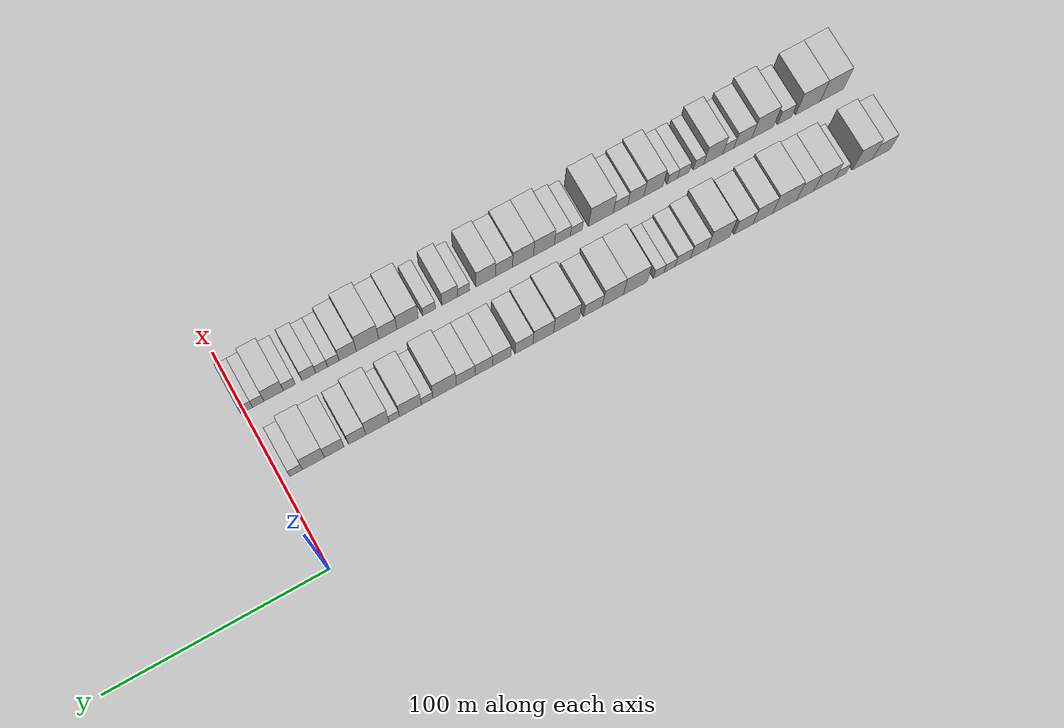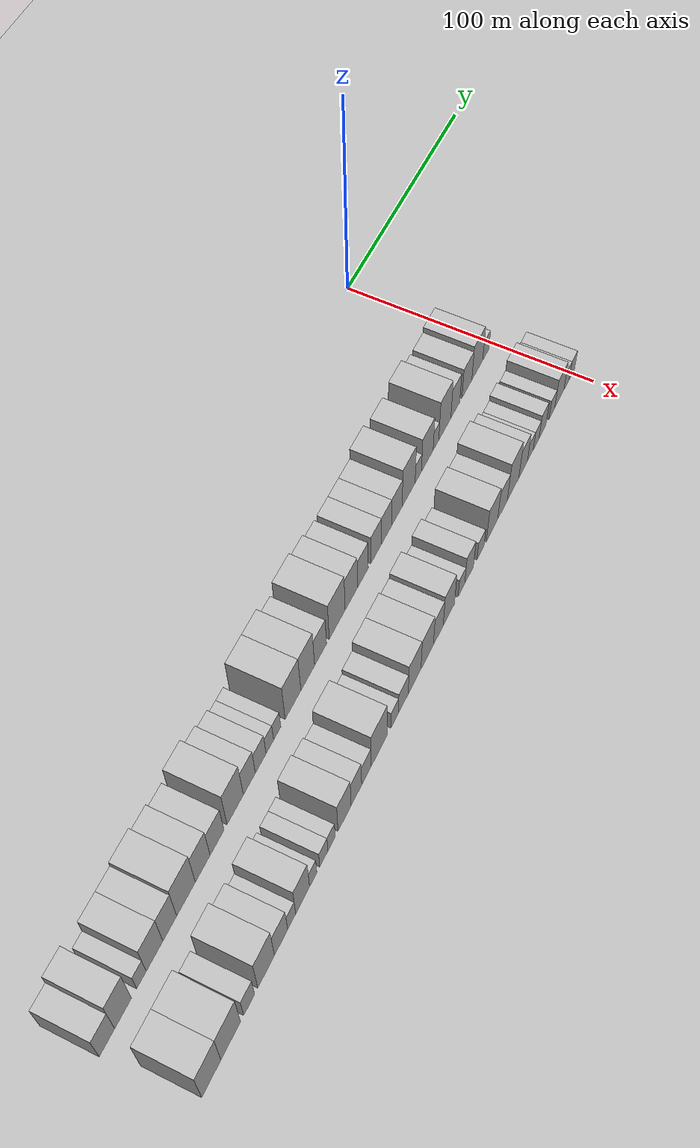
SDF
<sdf version="1.6">
 <world name="default">
  <include><name>ground_plane_1</name><uri>model://HANNAS_ground_plane</uri></include>
  <include>
   <name>ground_plane_2</name>
   <uri>model://HANNAS_ground_plane</uri>
   <pose>100 0 0  0 0 0</pose>
  </include>
  <model name="building_1">
   <static>1</static>
   <pose>50.0000 -279.6286 0 0.000000 0.000000 0.000000</pose>
   <link name="link">
    <pose>0 0 9.00 0 0 0</pose>
    <collision name="collision"><geometry><box><size>20.0000 8.7428 18.0000</size></box></geometry></collision>
    <visual name="visual">
     <cast_shadows>0</cast_shadows>
     <geometry><box><size>20.0000 8.7428 18.0000</size></box></geometry>
     <material>
      <script>
       <uri>model://HANNAS_wall/materials/scripts</uri>
       <uri>model://HANNAS_wall/materials/textures</uri>
       <name>vrc/HANNAS_wall</name>
      </script>
     </material>
    </visual>
   </link>
  </model>
  <model name="building_2">
   <static>1</static>
   <pose>50.0000 -270.4098 0 0.000000 0.000000 0.000000</pose>
   <link name="link">
    <pose>0 0 12.00 0 0 0</pose>
    <collision name="collision"><geometry><box><size>20.0000 9.6947 24.0000</size></box></geometry></collision>
    <visual name="visual">
     <cast_shadows>0</cast_shadows>
     <geometry><box><size>20.0000 9.6947 24.0000</size></box></geometry>
     <material>
      <script>
       <uri>model://HANNAS_wall/materials/scripts</uri>
       <uri>model://HANNAS_wall/materials/textures</uri>
       <name>vrc/HANNAS_wall</name>
      </script>
     </material>
    </visual>
   </link>
  </model>
  <model name="building_3">
   <static>1</static>
   <pose>50.0000 -259.7569 0 0.000000 0.000000 0.000000</pose>
   <link name="link">
    <pose>0 0 6.00 0 0 0</pose>
    <collision name="collision"><geometry><box><size>20.0000 5.6109 12.0000</size></box></geometry></collision>
    <visual name="visual">
     <cast_shadows>0</cast_shadows>
     <geometry><box><size>20.0000 5.6109 12.0000</size></box></geometry>
     <material>
      <script>
       <uri>model://HANNAS_wall/materials/scripts</uri>
       <uri>model://HANNAS_wall/materials/textures</uri>
       <name>vrc/HANNAS_wall</name>
      </script>
     </material>
    </visual>
   </link>
  </model>
  <model name="building_4">
   <static>1</static>
   <pose>50.0000 -252.0025 0 0.000000 0.000000 0.000000</pose>
   <link name="link">
    <pose>0 0 10.50 0 0 0</pose>
    <collision name="collision"><geometry><box><size>20.0000 9.8979 21.0000</size></box></geometry></collision>
    <visual name="visual">
     <cast_shadows>0</cast_shadows>
     <geometry><box><size>20.0000 9.8979 21.0000</size></box></geometry>
     <material>
      <script>
       <uri>model://HANNAS_wall/materials/scripts</uri>
       <uri>model://HANNAS_wall/materials/textures</uri>
       <name>vrc/HANNAS_wall</name>
      </script>
     </material>
    </visual>
   </link>
  </model>
  <model name="building_5">
   <static>1</static>
   <pose>50.0000 -242.8396 0 0.000000 0.000000 0.000000</pose>
   <link name="link">
    <pose>0 0 10.50 0 0 0</pose>
    <collision name="collision"><geometry><box><size>20.0000 8.4280 21.0000</size></box></geometry></collision>
    <visual name="visual">
     <cast_shadows>0</cast_shadows>
     <geometry><box><size>20.0000 8.4280 21.0000</size></box></geometry>
     <material>
      <script>
       <uri>model://HANNAS_wall/materials/scripts</uri>
       <uri>model://HANNAS_wall/materials/textures</uri>
       <name>vrc/HANNAS_wall</name>
      </script>
     </material>
    </visual>
   </link>
  </model>
  <model name="building_6">
   <static>1</static>
   <pose>50.0000 -232.8476 0 0.000000 0.000000 0.000000</pose>
   <link name="link">
    <pose>0 0 12.00 0 0 0</pose>
    <collision name="collision"><geometry><box><size>20.0000 11.5561 24.0000</size></box></geometry></collision>
    <visual name="visual">
     <cast_shadows>0</cast_shadows>
     <geometry><box><size>20.0000 11.5561 24.0000</size></box></geometry>
     <material>
      <script>
       <uri>model://HANNAS_wall/materials/scripts</uri>
       <uri>model://HANNAS_wall/materials/textures</uri>
       <name>vrc/HANNAS_wall</name>
      </script>
     </material>
    </visual>
   </link>
  </model>
  <model name="building_7">
   <static>1</static>
   <pose>50.0000 -222.4046 0 0.000000 0.000000 0.000000</pose>
   <link name="link">
    <pose>0 0 10.50 0 0 0</pose>
    <collision name="collision"><geometry><box><size>20.0000 9.3298 21.0000</size></box></geometry></collision>
    <visual name="visual">
     <cast_shadows>0</cast_shadows>
     <geometry><box><size>20.0000 9.3298 21.0000</size></box></geometry>
     <material>
      <script>
       <uri>model://HANNAS_wall/materials/scripts</uri>
       <uri>model://HANNAS_wall/materials/textures</uri>
       <name>vrc/HANNAS_wall</name>
      </script>
     </material>
    </visual>
   </link>
  </model>
  <model name="building_8">
   <static>1</static>
   <pose>50.0000 -213.2914 0 0.000000 0.000000 0.000000</pose>
   <link name="link">
    <pose>0 0 9.00 0 0 0</pose>
    <collision name="collision"><geometry><box><size>20.0000 8.8967 18.0000</size></box></geometry></collision>
    <visual name="visual">
     <cast_shadows>0</cast_shadows>
     <geometry><box><size>20.0000 8.8967 18.0000</size></box></geometry>
     <material>
      <script>
       <uri>model://HANNAS_wall/materials/scripts</uri>
       <uri>model://HANNAS_wall/materials/textures</uri>
       <name>vrc/HANNAS_wall</name>
      </script>
     </material>
    </visual>
   </link>
  </model>
  <model name="building_9">
   <static>1</static>
   <pose>50.0000 -201.5063 0 0.000000 0.000000 0.000000</pose>
   <link name="link">
    <pose>0 0 12.00 0 0 0</pose>
    <collision name="collision"><geometry><box><size>20.0000 10.6734 24.0000</size></box></geometry></collision>
    <visual name="visual">
     <cast_shadows>0</cast_shadows>
     <geometry><box><size>20.0000 10.6734 24.0000</size></box></geometry>
     <material>
      <script>
       <uri>model://HANNAS_wall/materials/scripts</uri>
       <uri>model://HANNAS_wall/materials/textures</uri>
       <name>vrc/HANNAS_wall</name>
      </script>
     </material>
    </visual>
   </link>
  </model>
  <model name="building_10">
   <static>1</static>
   <pose>50.0000 -192.1429 0 0.000000 0.000000 0.000000</pose>
   <link name="link">
    <pose>0 0 9.00 0 0 0</pose>
    <collision name="collision"><geometry><box><size>20.0000 8.0535 18.0000</size></box></geometry></collision>
    <visual name="visual">
     <cast_shadows>0</cast_shadows>
     <geometry><box><size>20.0000 8.0535 18.0000</size></box></geometry>
     <material>
      <script>
       <uri>model://HANNAS_wall/materials/scripts</uri>
       <uri>model://HANNAS_wall/materials/textures</uri>
       <name>vrc/HANNAS_wall</name>
      </script>
     </material>
    </visual>
   </link>
  </model>
  <model name="building_11">
   <static>1</static>
   <pose>50.0000 -184.4632 0 0.000000 0.000000 0.000000</pose>
   <link name="link">
    <pose>0 0 7.50 0 0 0</pose>
    <collision name="collision"><geometry><box><size>20.0000 7.3059 15.0000</size></box></geometry></collision>
    <visual name="visual">
     <cast_shadows>0</cast_shadows>
     <geometry><box><size>20.0000 7.3059 15.0000</size></box></geometry>
     <material>
      <script>
       <uri>model://HANNAS_wall/materials/scripts</uri>
       <uri>model://HANNAS_wall/materials/textures</uri>
       <name>vrc/HANNAS_wall</name>
      </script>
     </material>
    </visual>
   </link>
  </model>
  <model name="building_12">
   <static>1</static>
   <pose>50.0000 -178.2187 0 0.000000 0.000000 0.000000</pose>
   <link name="link">
    <pose>0 0 6.00 0 0 0</pose>
    <collision name="collision"><geometry><box><size>20.0000 5.1832 12.0000</size></box></geometry></collision>
    <visual name="visual">
     <cast_shadows>0</cast_shadows>
     <geometry><box><size>20.0000 5.1832 12.0000</size></box></geometry>
     <material>
      <script>
       <uri>model://HANNAS_wall/materials/scripts</uri>
       <uri>model://HANNAS_wall/materials/textures</uri>
       <name>vrc/HANNAS_wall</name>
      </script>
     </material>
    </visual>
   </link>
  </model>
  <model name="building_13">
   <static>1</static>
   <pose>50.0000 -173.1436 0 0.000000 0.000000 0.000000</pose>
   <link name="link">
    <pose>0 0 6.00 0 0 0</pose>
    <collision name="collision"><geometry><box><size>20.0000 4.9670 12.0000</size></box></geometry></collision>
    <visual name="visual">
     <cast_shadows>0</cast_shadows>
     <geometry><box><size>20.0000 4.9670 12.0000</size></box></geometry>
     <material>
      <script>
       <uri>model://HANNAS_wall/materials/scripts</uri>
       <uri>model://HANNAS_wall/materials/textures</uri>
       <name>vrc/HANNAS_wall</name>
      </script>
     </material>
    </visual>
   </link>
  </model>
  <model name="building_14">
   <static>1</static>
   <pose>50.0000 -162.1004 0 0.000000 0.000000 0.000000</pose>
   <link name="link">
    <pose>0 0 12.00 0 0 0</pose>
    <collision name="collision"><geometry><box><size>20.0000 11.1194 24.0000</size></box></geometry></collision>
    <visual name="visual">
     <cast_shadows>0</cast_shadows>
     <geometry><box><size>20.0000 11.1194 24.0000</size></box></geometry>
     <material>
      <script>
       <uri>model://HANNAS_wall/materials/scripts</uri>
       <uri>model://HANNAS_wall/materials/textures</uri>
       <name>vrc/HANNAS_wall</name>
      </script>
     </material>
    </visual>
   </link>
  </model>
  <model name="building_15">
   <static>1</static>
   <pose>50.0000 -151.5763 0 0.000000 0.000000 0.000000</pose>
   <link name="link">
    <pose>0 0 12.00 0 0 0</pose>
    <collision name="collision"><geometry><box><size>20.0000 9.9287 24.0000</size></box></geometry></collision>
    <visual name="visual">
     <cast_shadows>0</cast_shadows>
     <geometry><box><size>20.0000 9.9287 24.0000</size></box></geometry>
     <material>
      <script>
       <uri>model://HANNAS_wall/materials/scripts</uri>
       <uri>model://HANNAS_wall/materials/textures</uri>
       <name>vrc/HANNAS_wall</name>
      </script>
     </material>
    </visual>
   </link>
  </model>
  <model name="building_16">
   <static>1</static>
   <pose>50.0000 -142.2535 0 0.000000 0.000000 0.000000</pose>
   <link name="link">
    <pose>0 0 9.00 0 0 0</pose>
    <collision name="collision"><geometry><box><size>20.0000 8.7169 18.0000</size></box></geometry></collision>
    <visual name="visual">
     <cast_shadows>0</cast_shadows>
     <geometry><box><size>20.0000 8.7169 18.0000</size></box></geometry>
     <material>
      <script>
       <uri>model://HANNAS_wall/materials/scripts</uri>
       <uri>model://HANNAS_wall/materials/textures</uri>
       <name>vrc/HANNAS_wall</name>
      </script>
     </material>
    </visual>
   </link>
  </model>
  <model name="building_17">
   <static>1</static>
   <pose>50.0000 -129.9366 0 0.000000 0.000000 0.000000</pose>
   <link name="link">
    <pose>0 0 12.00 0 0 0</pose>
    <collision name="collision"><geometry><box><size>20.0000 11.9170 24.0000</size></box></geometry></collision>
    <visual name="visual">
     <cast_shadows>0</cast_shadows>
     <geometry><box><size>20.0000 11.9170 24.0000</size></box></geometry>
     <material>
      <script>
       <uri>model://HANNAS_wall/materials/scripts</uri>
       <uri>model://HANNAS_wall/materials/textures</uri>
       <name>vrc/HANNAS_wall</name>
      </script>
     </material>
    </visual>
   </link>
  </model>
  <model name="building_18">
   <static>1</static>
   <pose>50.0000 -119.2234 0 0.000000 0.000000 0.000000</pose>
   <link name="link">
    <pose>0 0 10.50 0 0 0</pose>
    <collision name="collision"><geometry><box><size>20.0000 9.5093 21.0000</size></box></geometry></collision>
    <visual name="visual">
     <cast_shadows>0</cast_shadows>
     <geometry><box><size>20.0000 9.5093 21.0000</size></box></geometry>
     <material>
      <script>
       <uri>model://HANNAS_wall/materials/scripts</uri>
       <uri>model://HANNAS_wall/materials/textures</uri>
       <name>vrc/HANNAS_wall</name>
      </script>
     </material>
    </visual>
   </link>
  </model>
  <model name="building_19">
   <static>1</static>
   <pose>50.0000 -110.3324 0 0.000000 0.000000 0.000000</pose>
   <link name="link">
    <pose>0 0 9.00 0 0 0</pose>
    <collision name="collision"><geometry><box><size>20.0000 8.2729 18.0000</size></box></geometry></collision>
    <visual name="visual">
     <cast_shadows>0</cast_shadows>
     <geometry><box><size>20.0000 8.2729 18.0000</size></box></geometry>
     <material>
      <script>
       <uri>model://HANNAS_wall/materials/scripts</uri>
       <uri>model://HANNAS_wall/materials/textures</uri>
       <name>vrc/HANNAS_wall</name>
      </script>
     </material>
    </visual>
   </link>
  </model>
  <model name="building_20">
   <static>1</static>
   <pose>50.0000 -100.0319 0 0.000000 0.000000 0.000000</pose>
   <link name="link">
    <pose>0 0 9.00 0 0 0</pose>
    <collision name="collision"><geometry><box><size>20.0000 8.3281 18.0000</size></box></geometry></collision>
    <visual name="visual">
     <cast_shadows>0</cast_shadows>
     <geometry><box><size>20.0000 8.3281 18.0000</size></box></geometry>
     <material>
      <script>
       <uri>model://HANNAS_wall/materials/scripts</uri>
       <uri>model://HANNAS_wall/materials/textures</uri>
       <name>vrc/HANNAS_wall</name>
      </script>
     </material>
    </visual>
   </link>
  </model>
  <model name="building_21">
   <static>1</static>
   <pose>50.0000 -91.8018 0 0.000000 0.000000 0.000000</pose>
   <link name="link">
    <pose>0 0 9.00 0 0 0</pose>
    <collision name="collision"><geometry><box><size>20.0000 8.1321 18.0000</size></box></geometry></collision>
    <visual name="visual">
     <cast_shadows>0</cast_shadows>
     <geometry><box><size>20.0000 8.1321 18.0000</size></box></geometry>
     <material>
      <script>
       <uri>model://HANNAS_wall/materials/scripts</uri>
       <uri>model://HANNAS_wall/materials/textures</uri>
       <name>vrc/HANNAS_wall</name>
      </script>
     </material>
    </visual>
   </link>
  </model>
  <model name="building_22">
   <static>1</static>
   <pose>50.0000 -83.4496 0 0.000000 0.000000 0.000000</pose>
   <link name="link">
    <pose>0 0 9.00 0 0 0</pose>
    <collision name="collision"><geometry><box><size>20.0000 8.5723 18.0000</size></box></geometry></collision>
    <visual name="visual">
     <cast_shadows>0</cast_shadows>
     <geometry><box><size>20.0000 8.5723 18.0000</size></box></geometry>
     <material>
      <script>
       <uri>model://HANNAS_wall/materials/scripts</uri>
       <uri>model://HANNAS_wall/materials/textures</uri>
       <name>vrc/HANNAS_wall</name>
      </script>
     </material>
    </visual>
   </link>
  </model>
  <model name="building_23">
   <static>1</static>
   <pose>50.0000 -73.8428 0 0.000000 0.000000 0.000000</pose>
   <link name="link">
    <pose>0 0 12.00 0 0 0</pose>
    <collision name="collision"><geometry><box><size>20.0000 10.6414 24.0000</size></box></geometry></collision>
    <visual name="visual">
     <cast_shadows>0</cast_shadows>
     <geometry><box><size>20.0000 10.6414 24.0000</size></box></geometry>
     <material>
      <script>
       <uri>model://HANNAS_wall/materials/scripts</uri>
       <uri>model://HANNAS_wall/materials/textures</uri>
       <name>vrc/HANNAS_wall</name>
      </script>
     </material>
    </visual>
   </link>
  </model>
  <model name="building_24">
   <static>1</static>
   <pose>50.0000 -65.8612 0 0.000000 0.000000 0.000000</pose>
   <link name="link">
    <pose>0 0 6.00 0 0 0</pose>
    <collision name="collision"><geometry><box><size>20.0000 5.3218 12.0000</size></box></geometry></collision>
    <visual name="visual">
     <cast_shadows>0</cast_shadows>
     <geometry><box><size>20.0000 5.3218 12.0000</size></box></geometry>
     <material>
      <script>
       <uri>model://HANNAS_wall/materials/scripts</uri>
       <uri>model://HANNAS_wall/materials/textures</uri>
       <name>vrc/HANNAS_wall</name>
      </script>
     </material>
    </visual>
   </link>
  </model>
  <model name="building_25">
   <static>1</static>
   <pose>50.0000 -58.2355 0 0.000000 0.000000 0.000000</pose>
   <link name="link">
    <pose>0 0 10.50 0 0 0</pose>
    <collision name="collision"><geometry><box><size>20.0000 9.9295 21.0000</size></box></geometry></collision>
    <visual name="visual">
     <cast_shadows>0</cast_shadows>
     <geometry><box><size>20.0000 9.9295 21.0000</size></box></geometry>
     <material>
      <script>
       <uri>model://HANNAS_wall/materials/scripts</uri>
       <uri>model://HANNAS_wall/materials/textures</uri>
       <name>vrc/HANNAS_wall</name>
      </script>
     </material>
    </visual>
   </link>
  </model>
  <model name="building_26">
   <static>1</static>
   <pose>50.0000 -50.8598 0 0.000000 0.000000 0.000000</pose>
   <link name="link">
    <pose>0 0 6.00 0 0 0</pose>
    <collision name="collision"><geometry><box><size>20.0000 4.8219 12.0000</size></box></geometry></collision>
    <visual name="visual">
     <cast_shadows>0</cast_shadows>
     <geometry><box><size>20.0000 4.8219 12.0000</size></box></geometry>
     <material>
      <script>
       <uri>model://HANNAS_wall/materials/scripts</uri>
       <uri>model://HANNAS_wall/materials/textures</uri>
       <name>vrc/HANNAS_wall</name>
      </script>
     </material>
    </visual>
   </link>
  </model>
  <model name="building_27">
   <static>1</static>
   <pose>50.0000 -43.2296 0 0.000000 0.000000 0.000000</pose>
   <link name="link">
    <pose>0 0 12.00 0 0 0</pose>
    <collision name="collision"><geometry><box><size>20.0000 10.4385 24.0000</size></box></geometry></collision>
    <visual name="visual">
     <cast_shadows>0</cast_shadows>
     <geometry><box><size>20.0000 10.4385 24.0000</size></box></geometry>
     <material>
      <script>
       <uri>model://HANNAS_wall/materials/scripts</uri>
       <uri>model://HANNAS_wall/materials/textures</uri>
       <name>vrc/HANNAS_wall</name>
      </script>
     </material>
    </visual>
   </link>
  </model>
  <model name="building_28">
   <static>1</static>
   <pose>50.0000 -34.0808 0 0.000000 0.000000 0.000000</pose>
   <link name="link">
    <pose>0 0 9.00 0 0 0</pose>
    <collision name="collision"><geometry><box><size>20.0000 7.8592 18.0000</size></box></geometry></collision>
    <visual name="visual">
     <cast_shadows>0</cast_shadows>
     <geometry><box><size>20.0000 7.8592 18.0000</size></box></geometry>
     <material>
      <script>
       <uri>model://HANNAS_wall/materials/scripts</uri>
       <uri>model://HANNAS_wall/materials/textures</uri>
       <name>vrc/HANNAS_wall</name>
      </script>
     </material>
    </visual>
   </link>
  </model>
  <model name="building_29">
   <static>1</static>
   <pose>50.0000 -23.7560 0 0.000000 0.000000 0.000000</pose>
   <link name="link">
    <pose>0 0 9.00 0 0 0</pose>
    <collision name="collision"><geometry><box><size>20.0000 8.7904 18.0000</size></box></geometry></collision>
    <visual name="visual">
     <cast_shadows>0</cast_shadows>
     <geometry><box><size>20.0000 8.7904 18.0000</size></box></geometry>
     <material>
      <script>
       <uri>model://HANNAS_wall/materials/scripts</uri>
       <uri>model://HANNAS_wall/materials/textures</uri>
       <name>vrc/HANNAS_wall</name>
      </script>
     </material>
    </visual>
   </link>
  </model>
  <model name="building_30">
   <static>1</static>
   <pose>50.0000 -14.3953 0 0.000000 0.000000 0.000000</pose>
   <link name="link">
    <pose>0 0 10.50 0 0 0</pose>
    <collision name="collision"><geometry><box><size>20.0000 9.9312 21.0000</size></box></geometry></collision>
    <visual name="visual">
     <cast_shadows>0</cast_shadows>
     <geometry><box><size>20.0000 9.9312 21.0000</size></box></geometry>
     <material>
      <script>
       <uri>model://HANNAS_wall/materials/scripts</uri>
       <uri>model://HANNAS_wall/materials/textures</uri>
       <name>vrc/HANNAS_wall</name>
      </script>
     </material>
    </visual>
   </link>
  </model>
  <model name="building_31">
   <static>1</static>
   <pose>50.0000 -6.5884 0 0.000000 0.000000 0.000000</pose>
   <link name="link">
    <pose>0 0 6.00 0 0 0</pose>
    <collision name="collision"><geometry><box><size>20.0000 5.6824 12.0000</size></box></geometry></collision>
    <visual name="visual">
     <cast_shadows>0</cast_shadows>
     <geometry><box><size>20.0000 5.6824 12.0000</size></box></geometry>
     <material>
      <script>
       <uri>model://HANNAS_wall/materials/scripts</uri>
       <uri>model://HANNAS_wall/materials/textures</uri>
       <name>vrc/HANNAS_wall</name>
      </script>
     </material>
    </visual>
   </link>
  </model>
  <model name="building_64">
   <static>1</static>
   <pose>82.0000 -275.2955 0 0.000000 0.000000 0.000000</pose>
   <link name="link">
    <pose>0 0 12.00 0 0 0</pose>
    <collision name="collision"><geometry><box><size>20.0000 11.4089 24.0000</size></box></geometry></collision>
    <visual name="visual">
     <cast_shadows>0</cast_shadows>
     <geometry><box><size>20.0000 11.4089 24.0000</size></box></geometry>
     <material>
      <script>
       <uri>model://HANNAS_wall/materials/scripts</uri>
       <uri>model://HANNAS_wall/materials/textures</uri>
       <name>vrc/HANNAS_wall</name>
      </script>
     </material>
    </visual>
   </link>
  </model>
  <model name="building_65">
   <static>1</static>
   <pose>82.0000 -263.6320 0 0.000000 0.000000 0.000000</pose>
   <link name="link">
    <pose>0 0 12.00 0 0 0</pose>
    <collision name="collision"><geometry><box><size>20.0000 11.9181 24.0000</size></box></geometry></collision>
    <visual name="visual">
     <cast_shadows>0</cast_shadows>
     <geometry><box><size>20.0000 11.9181 24.0000</size></box></geometry>
     <material>
      <script>
       <uri>model://HANNAS_wall/materials/scripts</uri>
       <uri>model://HANNAS_wall/materials/textures</uri>
       <name>vrc/HANNAS_wall</name>
      </script>
     </material>
    </visual>
   </link>
  </model>
  <model name="building_66">
   <static>1</static>
   <pose>82.0000 -252.3101 0 0.000000 0.000000 0.000000</pose>
   <link name="link">
    <pose>0 0 7.50 0 0 0</pose>
    <collision name="collision"><geometry><box><size>20.0000 6.7258 15.0000</size></box></geometry></collision>
    <visual name="visual">
     <cast_shadows>0</cast_shadows>
     <geometry><box><size>20.0000 6.7258 15.0000</size></box></geometry>
     <material>
      <script>
       <uri>model://HANNAS_wall/materials/scripts</uri>
       <uri>model://HANNAS_wall/materials/textures</uri>
       <name>vrc/HANNAS_wall</name>
      </script>
     </material>
    </visual>
   </link>
  </model>
  <model name="building_67">
   <static>1</static>
   <pose>82.0000 -241.6834 0 0.000000 0.000000 0.000000</pose>
   <link name="link">
    <pose>0 0 12.00 0 0 0</pose>
    <collision name="collision"><geometry><box><size>20.0000 10.5275 24.0000</size></box></geometry></collision>
    <visual name="visual">
     <cast_shadows>0</cast_shadows>
     <geometry><box><size>20.0000 10.5275 24.0000</size></box></geometry>
     <material>
      <script>
       <uri>model://HANNAS_wall/materials/scripts</uri>
       <uri>model://HANNAS_wall/materials/textures</uri>
       <name>vrc/HANNAS_wall</name>
      </script>
     </material>
    </visual>
   </link>
  </model>
  <model name="building_68">
   <static>1</static>
   <pose>82.0000 -232.1218 0 0.000000 0.000000 0.000000</pose>
   <link name="link">
    <pose>0 0 9.00 0 0 0</pose>
    <collision name="collision"><geometry><box><size>20.0000 8.5956 18.0000</size></box></geometry></collision>
    <visual name="visual">
     <cast_shadows>0</cast_shadows>
     <geometry><box><size>20.0000 8.5956 18.0000</size></box></geometry>
     <material>
      <script>
       <uri>model://HANNAS_wall/materials/scripts</uri>
       <uri>model://HANNAS_wall/materials/textures</uri>
       <name>vrc/HANNAS_wall</name>
      </script>
     </material>
    </visual>
   </link>
  </model>
  <model name="building_69">
   <static>1</static>
   <pose>82.0000 -225.1741 0 0.000000 0.000000 0.000000</pose>
   <link name="link">
    <pose>0 0 6.00 0 0 0</pose>
    <collision name="collision"><geometry><box><size>20.0000 5.2998 12.0000</size></box></geometry></collision>
    <visual name="visual">
     <cast_shadows>0</cast_shadows>
     <geometry><box><size>20.0000 5.2998 12.0000</size></box></geometry>
     <material>
      <script>
       <uri>model://HANNAS_wall/materials/scripts</uri>
       <uri>model://HANNAS_wall/materials/textures</uri>
       <name>vrc/HANNAS_wall</name>
      </script>
     </material>
    </visual>
   </link>
  </model>
  <model name="building_70">
   <static>1</static>
   <pose>82.0000 -217.9201 0 0.000000 0.000000 0.000000</pose>
   <link name="link">
    <pose>0 0 10.50 0 0 0</pose>
    <collision name="collision"><geometry><box><size>20.0000 9.2083 21.0000</size></box></geometry></collision>
    <visual name="visual">
     <cast_shadows>0</cast_shadows>
     <geometry><box><size>20.0000 9.2083 21.0000</size></box></geometry>
     <material>
      <script>
       <uri>model://HANNAS_wall/materials/scripts</uri>
       <uri>model://HANNAS_wall/materials/textures</uri>
       <name>vrc/HANNAS_wall</name>
      </script>
     </material>
    </visual>
   </link>
  </model>
  <model name="building_71">
   <static>1</static>
   <pose>82.0000 -210.8605 0 0.000000 0.000000 0.000000</pose>
   <link name="link">
    <pose>0 0 6.00 0 0 0</pose>
    <collision name="collision"><geometry><box><size>20.0000 4.9110 12.0000</size></box></geometry></collision>
    <visual name="visual">
     <cast_shadows>0</cast_shadows>
     <geometry><box><size>20.0000 4.9110 12.0000</size></box></geometry>
     <material>
      <script>
       <uri>model://HANNAS_wall/materials/scripts</uri>
       <uri>model://HANNAS_wall/materials/textures</uri>
       <name>vrc/HANNAS_wall</name>
      </script>
     </material>
    </visual>
   </link>
  </model>
  <model name="building_72">
   <static>1</static>
   <pose>82.0000 -203.6284 0 0.000000 0.000000 0.000000</pose>
   <link name="link">
    <pose>0 0 6.00 0 0 0</pose>
    <collision name="collision"><geometry><box><size>20.0000 5.5532 12.0000</size></box></geometry></collision>
    <visual name="visual">
     <cast_shadows>0</cast_shadows>
     <geometry><box><size>20.0000 5.5532 12.0000</size></box></geometry>
     <material>
      <script>
       <uri>model://HANNAS_wall/materials/scripts</uri>
       <uri>model://HANNAS_wall/materials/textures</uri>
       <name>vrc/HANNAS_wall</name>
      </script>
     </material>
    </visual>
   </link>
  </model>
  <model name="building_73">
   <static>1</static>
   <pose>82.0000 -198.3500 0 0.000000 0.000000 0.000000</pose>
   <link name="link">
    <pose>0 0 6.00 0 0 0</pose>
    <collision name="collision"><geometry><box><size>20.0000 5.0036 12.0000</size></box></geometry></collision>
    <visual name="visual">
     <cast_shadows>0</cast_shadows>
     <geometry><box><size>20.0000 5.0036 12.0000</size></box></geometry>
     <material>
      <script>
       <uri>model://HANNAS_wall/materials/scripts</uri>
       <uri>model://HANNAS_wall/materials/textures</uri>
       <name>vrc/HANNAS_wall</name>
      </script>
     </material>
    </visual>
   </link>
  </model>
  <model name="building_74">
   <static>1</static>
   <pose>82.0000 -189.2914 0 0.000000 0.000000 0.000000</pose>
   <link name="link">
    <pose>0 0 10.50 0 0 0</pose>
    <collision name="collision"><geometry><box><size>20.0000 9.1135 21.0000</size></box></geometry></collision>
    <visual name="visual">
     <cast_shadows>0</cast_shadows>
     <geometry><box><size>20.0000 9.1135 21.0000</size></box></geometry>
     <material>
      <script>
       <uri>model://HANNAS_wall/materials/scripts</uri>
       <uri>model://HANNAS_wall/materials/textures</uri>
       <name>vrc/HANNAS_wall</name>
      </script>
     </material>
    </visual>
   </link>
  </model>
  <model name="building_75">
   <static>1</static>
   <pose>82.0000 -180.9517 0 0.000000 0.000000 0.000000</pose>
   <link name="link">
    <pose>0 0 9.00 0 0 0</pose>
    <collision name="collision"><geometry><box><size>20.0000 7.5658 18.0000</size></box></geometry></collision>
    <visual name="visual">
     <cast_shadows>0</cast_shadows>
     <geometry><box><size>20.0000 7.5658 18.0000</size></box></geometry>
     <material>
      <script>
       <uri>model://HANNAS_wall/materials/scripts</uri>
       <uri>model://HANNAS_wall/materials/textures</uri>
       <name>vrc/HANNAS_wall</name>
      </script>
     </material>
    </visual>
   </link>
  </model>
  <model name="building_76">
   <static>1</static>
   <pose>82.0000 -173.7455 0 0.000000 0.000000 0.000000</pose>
   <link name="link">
    <pose>0 0 7.50 0 0 0</pose>
    <collision name="collision"><geometry><box><size>20.0000 6.8468 15.0000</size></box></geometry></collision>
    <visual name="visual">
     <cast_shadows>0</cast_shadows>
     <geometry><box><size>20.0000 6.8468 15.0000</size></box></geometry>
     <material>
      <script>
       <uri>model://HANNAS_wall/materials/scripts</uri>
       <uri>model://HANNAS_wall/materials/textures</uri>
       <name>vrc/HANNAS_wall</name>
      </script>
     </material>
    </visual>
   </link>
  </model>
  <model name="building_77">
   <static>1</static>
   <pose>82.0000 -164.4820 0 0.000000 0.000000 0.000000</pose>
   <link name="link">
    <pose>0 0 12.00 0 0 0</pose>
    <collision name="collision"><geometry><box><size>20.0000 11.6801 24.0000</size></box></geometry></collision>
    <visual name="visual">
     <cast_shadows>0</cast_shadows>
     <geometry><box><size>20.0000 11.6801 24.0000</size></box></geometry>
     <material>
      <script>
       <uri>model://HANNAS_wall/materials/scripts</uri>
       <uri>model://HANNAS_wall/materials/textures</uri>
       <name>vrc/HANNAS_wall</name>
      </script>
     </material>
    </visual>
   </link>
  </model>
  <model name="building_78">
   <static>1</static>
   <pose>82.0000 -152.8431 0 0.000000 0.000000 0.000000</pose>
   <link name="link">
    <pose>0 0 6.00 0 0 0</pose>
    <collision name="collision"><geometry><box><size>20.0000 5.5977 12.0000</size></box></geometry></collision>
    <visual name="visual">
     <cast_shadows>0</cast_shadows>
     <geometry><box><size>20.0000 5.5977 12.0000</size></box></geometry>
     <material>
      <script>
       <uri>model://HANNAS_wall/materials/scripts</uri>
       <uri>model://HANNAS_wall/materials/textures</uri>
       <name>vrc/HANNAS_wall</name>
      </script>
     </material>
    </visual>
   </link>
  </model>
  <model name="building_79">
   <static>1</static>
   <pose>82.0000 -146.3173 0 0.000000 0.000000 0.000000</pose>
   <link name="link">
    <pose>0 0 7.50 0 0 0</pose>
    <collision name="collision"><geometry><box><size>20.0000 7.4538 15.0000</size></box></geometry></collision>
    <visual name="visual">
     <cast_shadows>0</cast_shadows>
     <geometry><box><size>20.0000 7.4538 15.0000</size></box></geometry>
     <material>
      <script>
       <uri>model://HANNAS_wall/materials/scripts</uri>
       <uri>model://HANNAS_wall/materials/textures</uri>
       <name>vrc/HANNAS_wall</name>
      </script>
     </material>
    </visual>
   </link>
  </model>
  <model name="building_80">
   <static>1</static>
   <pose>82.0000 -137.6907 0 0.000000 0.000000 0.000000</pose>
   <link name="link">
    <pose>0 0 10.50 0 0 0</pose>
    <collision name="collision"><geometry><box><size>20.0000 9.7994 21.0000</size></box></geometry></collision>
    <visual name="visual">
     <cast_shadows>0</cast_shadows>
     <geometry><box><size>20.0000 9.7994 21.0000</size></box></geometry>
     <material>
      <script>
       <uri>model://HANNAS_wall/materials/scripts</uri>
       <uri>model://HANNAS_wall/materials/textures</uri>
       <name>vrc/HANNAS_wall</name>
      </script>
     </material>
    </visual>
   </link>
  </model>
  <model name="building_81">
   <static>1</static>
   <pose>82.0000 -127.8732 0 0.000000 0.000000 0.000000</pose>
   <link name="link">
    <pose>0 0 10.50 0 0 0</pose>
    <collision name="collision"><geometry><box><size>20.0000 9.8355 21.0000</size></box></geometry></collision>
    <visual name="visual">
     <cast_shadows>0</cast_shadows>
     <geometry><box><size>20.0000 9.8355 21.0000</size></box></geometry>
     <material>
      <script>
       <uri>model://HANNAS_wall/materials/scripts</uri>
       <uri>model://HANNAS_wall/materials/textures</uri>
       <name>vrc/HANNAS_wall</name>
      </script>
     </material>
    </visual>
   </link>
  </model>
  <model name="building_82">
   <static>1</static>
   <pose>82.0000 -119.0408 0 0.000000 0.000000 0.000000</pose>
   <link name="link">
    <pose>0 0 9.00 0 0 0</pose>
    <collision name="collision"><geometry><box><size>20.0000 7.8293 18.0000</size></box></geometry></collision>
    <visual name="visual">
     <cast_shadows>0</cast_shadows>
     <geometry><box><size>20.0000 7.8293 18.0000</size></box></geometry>
     <material>
      <script>
       <uri>model://HANNAS_wall/materials/scripts</uri>
       <uri>model://HANNAS_wall/materials/textures</uri>
       <name>vrc/HANNAS_wall</name>
      </script>
     </material>
    </visual>
   </link>
  </model>
  <model name="building_83">
   <static>1</static>
   <pose>82.0000 -110.5691 0 0.000000 0.000000 0.000000</pose>
   <link name="link">
    <pose>0 0 10.50 0 0 0</pose>
    <collision name="collision"><geometry><box><size>20.0000 9.1142 21.0000</size></box></geometry></collision>
    <visual name="visual">
     <cast_shadows>0</cast_shadows>
     <geometry><box><size>20.0000 9.1142 21.0000</size></box></geometry>
     <material>
      <script>
       <uri>model://HANNAS_wall/materials/scripts</uri>
       <uri>model://HANNAS_wall/materials/textures</uri>
       <name>vrc/HANNAS_wall</name>
      </script>
     </material>
    </visual>
   </link>
  </model>
  <model name="building_84">
   <static>1</static>
   <pose>82.0000 -100.2811 0 0.000000 0.000000 0.000000</pose>
   <link name="link">
    <pose>0 0 6.00 0 0 0</pose>
    <collision name="collision"><geometry><box><size>20.0000 5.4619 12.0000</size></box></geometry></collision>
    <visual name="visual">
     <cast_shadows>0</cast_shadows>
     <geometry><box><size>20.0000 5.4619 12.0000</size></box></geometry>
     <material>
      <script>
       <uri>model://HANNAS_wall/materials/scripts</uri>
       <uri>model://HANNAS_wall/materials/textures</uri>
       <name>vrc/HANNAS_wall</name>
      </script>
     </material>
    </visual>
   </link>
  </model>
  <model name="building_85">
   <static>1</static>
   <pose>82.0000 -93.8943 0 0.000000 0.000000 0.000000</pose>
   <link name="link">
    <pose>0 0 9.00 0 0 0</pose>
    <collision name="collision"><geometry><box><size>20.0000 7.3117 18.0000</size></box></geometry></collision>
    <visual name="visual">
     <cast_shadows>0</cast_shadows>
     <geometry><box><size>20.0000 7.3117 18.0000</size></box></geometry>
     <material>
      <script>
       <uri>model://HANNAS_wall/materials/scripts</uri>
       <uri>model://HANNAS_wall/materials/textures</uri>
       <name>vrc/HANNAS_wall</name>
      </script>
     </material>
    </visual>
   </link>
  </model>
  <model name="building_86">
   <static>1</static>
   <pose>82.0000 -84.2694 0 0.000000 0.000000 0.000000</pose>
   <link name="link">
    <pose>0 0 6.00 0 0 0</pose>
    <collision name="collision"><geometry><box><size>20.0000 5.9382 12.0000</size></box></geometry></collision>
    <visual name="visual">
     <cast_shadows>0</cast_shadows>
     <geometry><box><size>20.0000 5.9382 12.0000</size></box></geometry>
     <material>
      <script>
       <uri>model://HANNAS_wall/materials/scripts</uri>
       <uri>model://HANNAS_wall/materials/textures</uri>
       <name>vrc/HANNAS_wall</name>
      </script>
     </material>
    </visual>
   </link>
  </model>
  <model name="building_87">
   <static>1</static>
   <pose>82.0000 -74.4028 0 0.000000 0.000000 0.000000</pose>
   <link name="link">
    <pose>0 0 10.50 0 0 0</pose>
    <collision name="collision"><geometry><box><size>20.0000 9.7950 21.0000</size></box></geometry></collision>
    <visual name="visual">
     <cast_shadows>0</cast_shadows>
     <geometry><box><size>20.0000 9.7950 21.0000</size></box></geometry>
     <material>
      <script>
       <uri>model://HANNAS_wall/materials/scripts</uri>
       <uri>model://HANNAS_wall/materials/textures</uri>
       <name>vrc/HANNAS_wall</name>
      </script>
     </material>
    </visual>
   </link>
  </model>
  <model name="building_88">
   <static>1</static>
   <pose>82.0000 -65.3342 0 0.000000 0.000000 0.000000</pose>
   <link name="link">
    <pose>0 0 9.00 0 0 0</pose>
    <collision name="collision"><geometry><box><size>20.0000 8.3422 18.0000</size></box></geometry></collision>
    <visual name="visual">
     <cast_shadows>0</cast_shadows>
     <geometry><box><size>20.0000 8.3422 18.0000</size></box></geometry>
     <material>
      <script>
       <uri>model://HANNAS_wall/materials/scripts</uri>
       <uri>model://HANNAS_wall/materials/textures</uri>
       <name>vrc/HANNAS_wall</name>
      </script>
     </material>
    </visual>
   </link>
  </model>
  <model name="building_89">
   <static>1</static>
   <pose>82.0000 -56.0414 0 0.000000 0.000000 0.000000</pose>
   <link name="link">
    <pose>0 0 12.00 0 0 0</pose>
    <collision name="collision"><geometry><box><size>20.0000 10.2433 24.0000</size></box></geometry></collision>
    <visual name="visual">
     <cast_shadows>0</cast_shadows>
     <geometry><box><size>20.0000 10.2433 24.0000</size></box></geometry>
     <material>
      <script>
       <uri>model://HANNAS_wall/materials/scripts</uri>
       <uri>model://HANNAS_wall/materials/textures</uri>
       <name>vrc/HANNAS_wall</name>
      </script>
     </material>
    </visual>
   </link>
  </model>
  <model name="building_90">
   <static>1</static>
   <pose>82.0000 -46.9925 0 0.000000 0.000000 0.000000</pose>
   <link name="link">
    <pose>0 0 9.00 0 0 0</pose>
    <collision name="collision"><geometry><box><size>20.0000 7.8545 18.0000</size></box></geometry></collision>
    <visual name="visual">
     <cast_shadows>0</cast_shadows>
     <geometry><box><size>20.0000 7.8545 18.0000</size></box></geometry>
     <material>
      <script>
       <uri>model://HANNAS_wall/materials/scripts</uri>
       <uri>model://HANNAS_wall/materials/textures</uri>
       <name>vrc/HANNAS_wall</name>
      </script>
     </material>
    </visual>
   </link>
  </model>
  <model name="building_91">
   <static>1</static>
   <pose>82.0000 -40.4190 0 0.000000 0.000000 0.000000</pose>
   <link name="link">
    <pose>0 0 6.00 0 0 0</pose>
    <collision name="collision"><geometry><box><size>20.0000 5.2924 12.0000</size></box></geometry></collision>
    <visual name="visual">
     <cast_shadows>0</cast_shadows>
     <geometry><box><size>20.0000 5.2924 12.0000</size></box></geometry>
     <material>
      <script>
       <uri>model://HANNAS_wall/materials/scripts</uri>
       <uri>model://HANNAS_wall/materials/textures</uri>
       <name>vrc/HANNAS_wall</name>
      </script>
     </material>
    </visual>
   </link>
  </model>
  <model name="building_92">
   <static>1</static>
   <pose>82.0000 -35.0795 0 0.000000 0.000000 0.000000</pose>
   <link name="link">
    <pose>0 0 6.00 0 0 0</pose>
    <collision name="collision"><geometry><box><size>20.0000 5.3868 12.0000</size></box></geometry></collision>
    <visual name="visual">
     <cast_shadows>0</cast_shadows>
     <geometry><box><size>20.0000 5.3868 12.0000</size></box></geometry>
     <material>
      <script>
       <uri>model://HANNAS_wall/materials/scripts</uri>
       <uri>model://HANNAS_wall/materials/textures</uri>
       <name>vrc/HANNAS_wall</name>
      </script>
     </material>
    </visual>
   </link>
  </model>
  <model name="building_93">
   <static>1</static>
   <pose>82.0000 -29.2630 0 0.000000 0.000000 0.000000</pose>
   <link name="link">
    <pose>0 0 7.50 0 0 0</pose>
    <collision name="collision"><geometry><box><size>20.0000 6.2462 15.0000</size></box></geometry></collision>
    <visual name="visual">
     <cast_shadows>0</cast_shadows>
     <geometry><box><size>20.0000 6.2462 15.0000</size></box></geometry>
     <material>
      <script>
       <uri>model://HANNAS_wall/materials/scripts</uri>
       <uri>model://HANNAS_wall/materials/textures</uri>
       <name>vrc/HANNAS_wall</name>
      </script>
     </material>
    </visual>
   </link>
  </model>
  <model name="building_94">
   <static>1</static>
   <pose>82.0000 -20.4497 0 0.000000 0.000000 0.000000</pose>
   <link name="link">
    <pose>0 0 6.00 0 0 0</pose>
    <collision name="collision"><geometry><box><size>20.0000 5.3804 12.0000</size></box></geometry></collision>
    <visual name="visual">
     <cast_shadows>0</cast_shadows>
     <geometry><box><size>20.0000 5.3804 12.0000</size></box></geometry>
     <material>
      <script>
       <uri>model://HANNAS_wall/materials/scripts</uri>
       <uri>model://HANNAS_wall/materials/textures</uri>
       <name>vrc/HANNAS_wall</name>
      </script>
     </material>
    </visual>
   </link>
  </model>
  <model name="building_95">
   <static>1</static>
   <pose>82.0000 -13.3585 0 0.000000 0.000000 0.000000</pose>
   <link name="link">
    <pose>0 0 9.00 0 0 0</pose>
    <collision name="collision"><geometry><box><size>20.0000 8.8019 18.0000</size></box></geometry></collision>
    <visual name="visual">
     <cast_shadows>0</cast_shadows>
     <geometry><box><size>20.0000 8.8019 18.0000</size></box></geometry>
     <material>
      <script>
       <uri>model://HANNAS_wall/materials/scripts</uri>
       <uri>model://HANNAS_wall/materials/textures</uri>
       <name>vrc/HANNAS_wall</name>
      </script>
     </material>
    </visual>
   </link>
  </model>
  <model name="building_96">
   <static>1</static>
   <pose>82.0000 -6.3916 0 0.000000 0.000000 0.000000</pose>
   <link name="link">
    <pose>0 0 6.00 0 0 0</pose>
    <collision name="collision"><geometry><box><size>20.0000 5.1319 12.0000</size></box></geometry></collision>
    <visual name="visual">
     <cast_shadows>0</cast_shadows>
     <geometry><box><size>20.0000 5.1319 12.0000</size></box></geometry>
     <material>
      <script>
       <uri>model://HANNAS_wall/materials/scripts</uri>
       <uri>model://HANNAS_wall/materials/textures</uri>
       <name>vrc/HANNAS_wall</name>
      </script>
     </material>
    </visual>
   </link>
  </model>
  <model name="building_97">
   <static>1</static>
   <pose>82.0000 -1.1610 0 0.000000 0.000000 0.000000</pose>
   <link name="link">
    <pose>0 0 6.00 0 0 0</pose>
    <collision name="collision"><geometry><box><size>20.0000 5.3291 12.0000</size></box></geometry></collision>
    <visual name="visual">
     <cast_shadows>0</cast_shadows>
     <geometry><box><size>20.0000 5.3291 12.0000</size></box></geometry>
     <material>
      <script>
       <uri>model://HANNAS_wall/materials/scripts</uri>
       <uri>model://HANNAS_wall/materials/textures</uri>
       <name>vrc/HANNAS_wall</name>
      </script>
     </material>
    </visual>
   </link>
  </model>
 </world>
</sdf>
